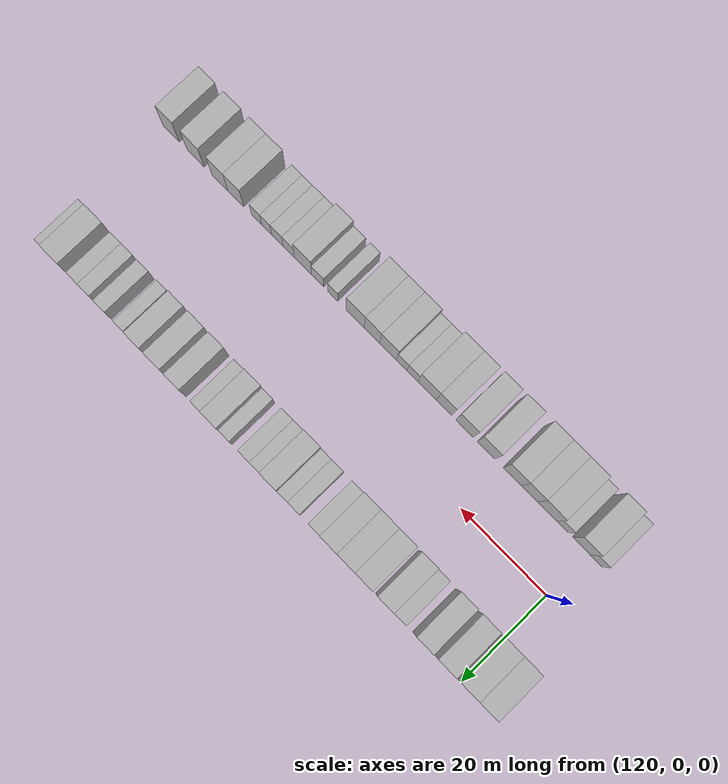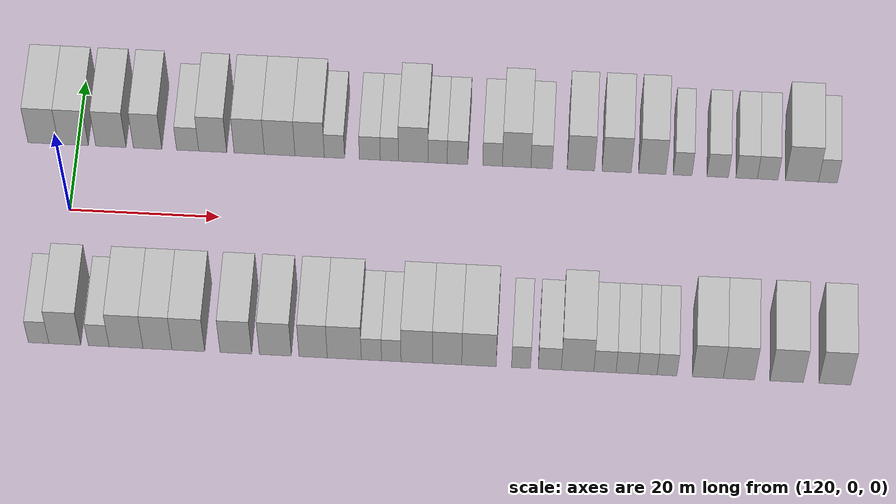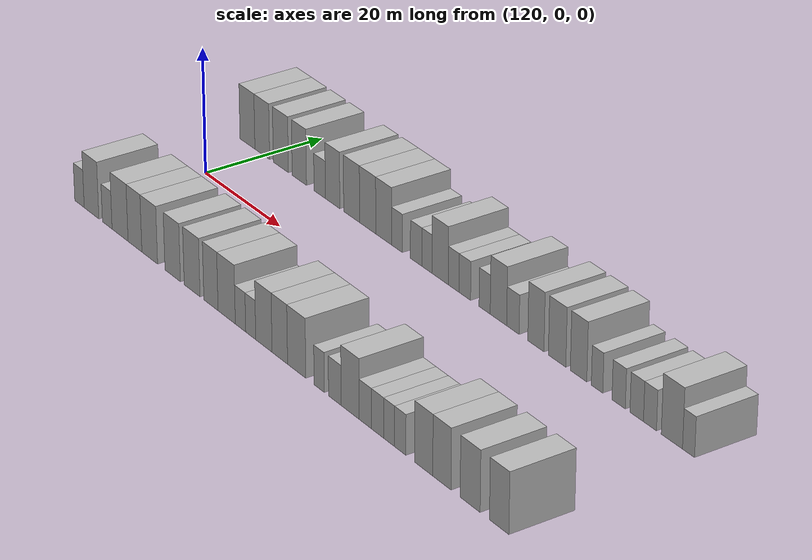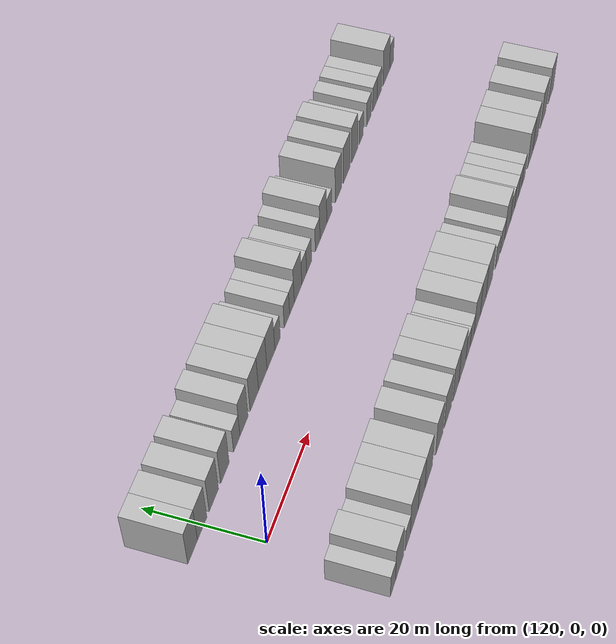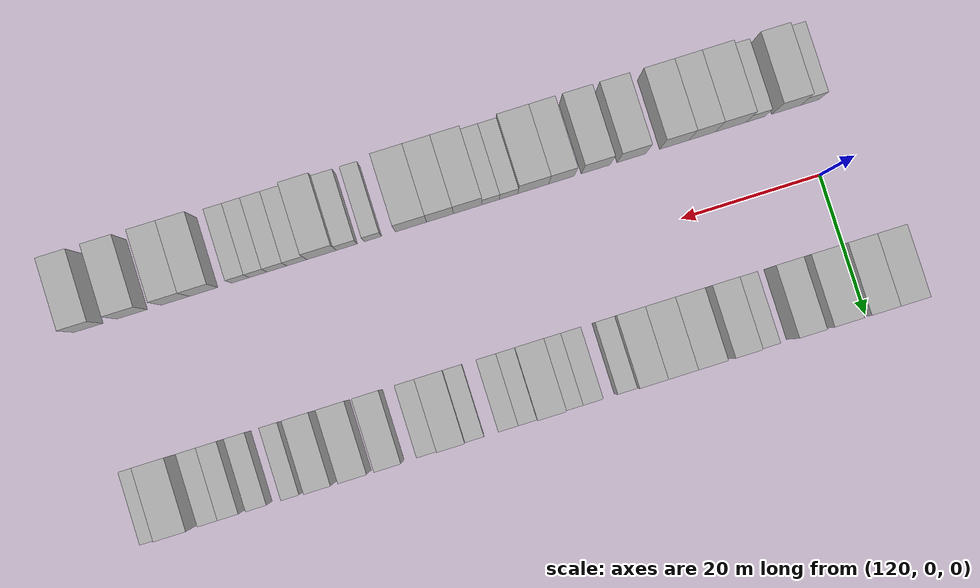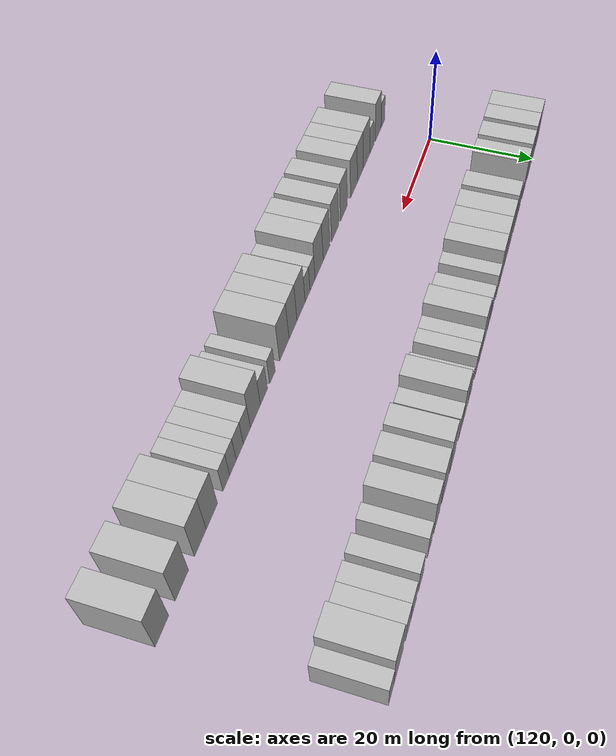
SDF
<sdf version="1.6">
 <world name="default">
  <model name="building_27">
   <static>1</static>
   <pose>115.3012 15.0000 0 0.000000 0.000000 1.570796</pose>
   <link name="link">
    <pose>0 0 4.50 0 0 0</pose>
    <collision name="collision"><geometry><box><size>10.0000 4.1226 9.0000</size></box></geometry></collision>
    <visual name="visual">
     <cast_shadows>0</cast_shadows>
     <geometry><box><size>10.0000 4.1226 9.0000</size></box></geometry>
     <material>
      <script>
       <uri>model://HANNAS_wall/materials/scripts</uri>
       <uri>model://HANNAS_wall/materials/textures</uri>
       <name>vrc/HANNAS_wall</name>
      </script>
     </material>
    </visual>
   </link>
  </model>
  <model name="building_28">
   <static>1</static>
   <pose>119.3822 15.0000 0 0.000000 0.000000 1.570796</pose>
   <link name="link">
    <pose>0 0 4.50 0 0 0</pose>
    <collision name="collision"><geometry><box><size>10.0000 4.0395 9.0000</size></box></geometry></collision>
    <visual name="visual">
     <cast_shadows>0</cast_shadows>
     <geometry><box><size>10.0000 4.0395 9.0000</size></box></geometry>
     <material>
      <script>
       <uri>model://HANNAS_wall/materials/scripts</uri>
       <uri>model://HANNAS_wall/materials/textures</uri>
       <name>vrc/HANNAS_wall</name>
      </script>
     </material>
    </visual>
   </link>
  </model>
  <model name="building_29">
   <static>1</static>
   <pose>124.4516 15.0000 0 0.000000 0.000000 1.570796</pose>
   <link name="link">
    <pose>0 0 4.50 0 0 0</pose>
    <collision name="collision"><geometry><box><size>10.0000 4.0994 9.0000</size></box></geometry></collision>
    <visual name="visual">
     <cast_shadows>0</cast_shadows>
     <geometry><box><size>10.0000 4.0994 9.0000</size></box></geometry>
     <material>
      <script>
       <uri>model://HANNAS_wall/materials/scripts</uri>
       <uri>model://HANNAS_wall/materials/textures</uri>
       <name>vrc/HANNAS_wall</name>
      </script>
     </material>
    </visual>
   </link>
  </model>
  <model name="building_30">
   <static>1</static>
   <pose>129.4214 15.0000 0 0.000000 0.000000 1.570796</pose>
   <link name="link">
    <pose>0 0 4.50 0 0 0</pose>
    <collision name="collision"><geometry><box><size>10.0000 3.8402 9.0000</size></box></geometry></collision>
    <visual name="visual">
     <cast_shadows>0</cast_shadows>
     <geometry><box><size>10.0000 3.8402 9.0000</size></box></geometry>
     <material>
      <script>
       <uri>model://HANNAS_wall/materials/scripts</uri>
       <uri>model://HANNAS_wall/materials/textures</uri>
       <name>vrc/HANNAS_wall</name>
      </script>
     </material>
    </visual>
   </link>
  </model>
  <model name="building_31">
   <static>1</static>
   <pose>134.8365 15.0000 0 0.000000 0.000000 1.570796</pose>
   <link name="link">
    <pose>0 0 3.00 0 0 0</pose>
    <collision name="collision"><geometry><box><size>10.0000 2.9901 6.0000</size></box></geometry></collision>
    <visual name="visual">
     <cast_shadows>0</cast_shadows>
     <geometry><box><size>10.0000 2.9901 6.0000</size></box></geometry>
     <material>
      <script>
       <uri>model://HANNAS_wall/materials/scripts</uri>
       <uri>model://HANNAS_wall/materials/textures</uri>
       <name>vrc/HANNAS_wall</name>
      </script>
     </material>
    </visual>
   </link>
  </model>
  <model name="building_32">
   <static>1</static>
   <pose>138.2175 15.0000 0 0.000000 0.000000 1.570796</pose>
   <link name="link">
    <pose>0 0 4.50 0 0 0</pose>
    <collision name="collision"><geometry><box><size>10.0000 3.7719 9.0000</size></box></geometry></collision>
    <visual name="visual">
     <cast_shadows>0</cast_shadows>
     <geometry><box><size>10.0000 3.7719 9.0000</size></box></geometry>
     <material>
      <script>
       <uri>model://HANNAS_wall/materials/scripts</uri>
       <uri>model://HANNAS_wall/materials/textures</uri>
       <name>vrc/HANNAS_wall</name>
      </script>
     </material>
    </visual>
   </link>
  </model>
  <model name="building_33">
   <static>1</static>
   <pose>143.1482 15.0000 0 0.000000 0.000000 1.570796</pose>
   <link name="link">
    <pose>0 0 4.50 0 0 0</pose>
    <collision name="collision"><geometry><box><size>10.0000 4.0895 9.0000</size></box></geometry></collision>
    <visual name="visual">
     <cast_shadows>0</cast_shadows>
     <geometry><box><size>10.0000 4.0895 9.0000</size></box></geometry>
     <material>
      <script>
       <uri>model://HANNAS_wall/materials/scripts</uri>
       <uri>model://HANNAS_wall/materials/textures</uri>
       <name>vrc/HANNAS_wall</name>
      </script>
     </material>
    </visual>
   </link>
  </model>
  <model name="building_34">
   <static>1</static>
   <pose>147.2556 15.0000 0 0.000000 0.000000 1.570796</pose>
   <link name="link">
    <pose>0 0 4.50 0 0 0</pose>
    <collision name="collision"><geometry><box><size>10.0000 4.1252 9.0000</size></box></geometry></collision>
    <visual name="visual">
     <cast_shadows>0</cast_shadows>
     <geometry><box><size>10.0000 4.1252 9.0000</size></box></geometry>
     <material>
      <script>
       <uri>model://HANNAS_wall/materials/scripts</uri>
       <uri>model://HANNAS_wall/materials/textures</uri>
       <name>vrc/HANNAS_wall</name>
      </script>
     </material>
    </visual>
   </link>
  </model>
  <model name="building_35">
   <static>1</static>
   <pose>151.2956 15.0000 0 0.000000 0.000000 1.570796</pose>
   <link name="link">
    <pose>0 0 4.50 0 0 0</pose>
    <collision name="collision"><geometry><box><size>10.0000 3.9548 9.0000</size></box></geometry></collision>
    <visual name="visual">
     <cast_shadows>0</cast_shadows>
     <geometry><box><size>10.0000 3.9548 9.0000</size></box></geometry>
     <material>
      <script>
       <uri>model://HANNAS_wall/materials/scripts</uri>
       <uri>model://HANNAS_wall/materials/textures</uri>
       <name>vrc/HANNAS_wall</name>
      </script>
     </material>
    </visual>
   </link>
  </model>
  <model name="building_36">
   <static>1</static>
   <pose>154.6378 15.0000 0 0.000000 0.000000 1.570796</pose>
   <link name="link">
    <pose>0 0 3.00 0 0 0</pose>
    <collision name="collision"><geometry><box><size>10.0000 2.7296 6.0000</size></box></geometry></collision>
    <visual name="visual">
     <cast_shadows>0</cast_shadows>
     <geometry><box><size>10.0000 2.7296 6.0000</size></box></geometry>
     <material>
      <script>
       <uri>model://HANNAS_wall/materials/scripts</uri>
       <uri>model://HANNAS_wall/materials/textures</uri>
       <name>vrc/HANNAS_wall</name>
      </script>
     </material>
    </visual>
   </link>
  </model>
  <model name="building_37">
   <static>1</static>
   <pose>159.4041 15.0000 0 0.000000 0.000000 1.570796</pose>
   <link name="link">
    <pose>0 0 3.00 0 0 0</pose>
    <collision name="collision"><geometry><box><size>10.0000 2.8030 6.0000</size></box></geometry></collision>
    <visual name="visual">
     <cast_shadows>0</cast_shadows>
     <geometry><box><size>10.0000 2.8030 6.0000</size></box></geometry>
     <material>
      <script>
       <uri>model://HANNAS_wall/materials/scripts</uri>
       <uri>model://HANNAS_wall/materials/textures</uri>
       <name>vrc/HANNAS_wall</name>
      </script>
     </material>
    </visual>
   </link>
  </model>
  <model name="building_38">
   <static>1</static>
   <pose>162.0353 15.0000 0 0.000000 0.000000 1.570796</pose>
   <link name="link">
    <pose>0 0 3.00 0 0 0</pose>
    <collision name="collision"><geometry><box><size>10.0000 2.4594 6.0000</size></box></geometry></collision>
    <visual name="visual">
     <cast_shadows>0</cast_shadows>
     <geometry><box><size>10.0000 2.4594 6.0000</size></box></geometry>
     <material>
      <script>
       <uri>model://HANNAS_wall/materials/scripts</uri>
       <uri>model://HANNAS_wall/materials/textures</uri>
       <name>vrc/HANNAS_wall</name>
      </script>
     </material>
    </visual>
   </link>
  </model>
  <model name="building_39">
   <static>1</static>
   <pose>165.2494 15.0000 0 0.000000 0.000000 1.570796</pose>
   <link name="link">
    <pose>0 0 4.50 0 0 0</pose>
    <collision name="collision"><geometry><box><size>10.0000 3.9687 9.0000</size></box></geometry></collision>
    <visual name="visual">
     <cast_shadows>0</cast_shadows>
     <geometry><box><size>10.0000 3.9687 9.0000</size></box></geometry>
     <material>
      <script>
       <uri>model://HANNAS_wall/materials/scripts</uri>
       <uri>model://HANNAS_wall/materials/textures</uri>
       <name>vrc/HANNAS_wall</name>
      </script>
     </material>
    </visual>
   </link>
  </model>
  <model name="building_40">
   <static>1</static>
   <pose>168.5299 15.0000 0 0.000000 0.000000 1.570796</pose>
   <link name="link">
    <pose>0 0 3.00 0 0 0</pose>
    <collision name="collision"><geometry><box><size>10.0000 2.5924 6.0000</size></box></geometry></collision>
    <visual name="visual">
     <cast_shadows>0</cast_shadows>
     <geometry><box><size>10.0000 2.5924 6.0000</size></box></geometry>
     <material>
      <script>
       <uri>model://HANNAS_wall/materials/scripts</uri>
       <uri>model://HANNAS_wall/materials/textures</uri>
       <name>vrc/HANNAS_wall</name>
      </script>
     </material>
    </visual>
   </link>
  </model>
  <model name="building_41">
   <static>1</static>
   <pose>171.2062 15.0000 0 0.000000 0.000000 1.570796</pose>
   <link name="link">
    <pose>0 0 3.00 0 0 0</pose>
    <collision name="collision"><geometry><box><size>10.0000 2.7601 6.0000</size></box></geometry></collision>
    <visual name="visual">
     <cast_shadows>0</cast_shadows>
     <geometry><box><size>10.0000 2.7601 6.0000</size></box></geometry>
     <material>
      <script>
       <uri>model://HANNAS_wall/materials/scripts</uri>
       <uri>model://HANNAS_wall/materials/textures</uri>
       <name>vrc/HANNAS_wall</name>
      </script>
     </material>
    </visual>
   </link>
  </model>
  <model name="building_42">
   <static>1</static>
   <pose>175.9025 15.0000 0 0.000000 0.000000 1.570796</pose>
   <link name="link">
    <pose>0 0 3.00 0 0 0</pose>
    <collision name="collision"><geometry><box><size>10.0000 2.6325 6.0000</size></box></geometry></collision>
    <visual name="visual">
     <cast_shadows>0</cast_shadows>
     <geometry><box><size>10.0000 2.6325 6.0000</size></box></geometry>
     <material>
      <script>
       <uri>model://HANNAS_wall/materials/scripts</uri>
       <uri>model://HANNAS_wall/materials/textures</uri>
       <name>vrc/HANNAS_wall</name>
      </script>
     </material>
    </visual>
   </link>
  </model>
  <model name="building_43">
   <static>1</static>
   <pose>179.1358 15.0000 0 0.000000 0.000000 1.570796</pose>
   <link name="link">
    <pose>0 0 4.50 0 0 0</pose>
    <collision name="collision"><geometry><box><size>10.0000 3.8341 9.0000</size></box></geometry></collision>
    <visual name="visual">
     <cast_shadows>0</cast_shadows>
     <geometry><box><size>10.0000 3.8341 9.0000</size></box></geometry>
     <material>
      <script>
       <uri>model://HANNAS_wall/materials/scripts</uri>
       <uri>model://HANNAS_wall/materials/textures</uri>
       <name>vrc/HANNAS_wall</name>
      </script>
     </material>
    </visual>
   </link>
  </model>
  <model name="building_44">
   <static>1</static>
   <pose>182.4893 15.0000 0 0.000000 0.000000 1.570796</pose>
   <link name="link">
    <pose>0 0 3.00 0 0 0</pose>
    <collision name="collision"><geometry><box><size>10.0000 2.8729 6.0000</size></box></geometry></collision>
    <visual name="visual">
     <cast_shadows>0</cast_shadows>
     <geometry><box><size>10.0000 2.8729 6.0000</size></box></geometry>
     <material>
      <script>
       <uri>model://HANNAS_wall/materials/scripts</uri>
       <uri>model://HANNAS_wall/materials/textures</uri>
       <name>vrc/HANNAS_wall</name>
      </script>
     </material>
    </visual>
   </link>
  </model>
  <model name="building_45">
   <static>1</static>
   <pose>187.7639 15.0000 0 0.000000 0.000000 1.570796</pose>
   <link name="link">
    <pose>0 0 4.50 0 0 0</pose>
    <collision name="collision"><geometry><box><size>10.0000 3.6764 9.0000</size></box></geometry></collision>
    <visual name="visual">
     <cast_shadows>0</cast_shadows>
     <geometry><box><size>10.0000 3.6764 9.0000</size></box></geometry>
     <material>
      <script>
       <uri>model://HANNAS_wall/materials/scripts</uri>
       <uri>model://HANNAS_wall/materials/textures</uri>
       <name>vrc/HANNAS_wall</name>
      </script>
     </material>
    </visual>
   </link>
  </model>
  <model name="building_46">
   <static>1</static>
   <pose>192.5586 15.0000 0 0.000000 0.000000 1.570796</pose>
   <link name="link">
    <pose>0 0 4.50 0 0 0</pose>
    <collision name="collision"><geometry><box><size>10.0000 3.9129 9.0000</size></box></geometry></collision>
    <visual name="visual">
     <cast_shadows>0</cast_shadows>
     <geometry><box><size>10.0000 3.9129 9.0000</size></box></geometry>
     <material>
      <script>
       <uri>model://HANNAS_wall/materials/scripts</uri>
       <uri>model://HANNAS_wall/materials/textures</uri>
       <name>vrc/HANNAS_wall</name>
      </script>
     </material>
    </visual>
   </link>
  </model>
  <model name="building_47">
   <static>1</static>
   <pose>197.3380 15.0000 0 0.000000 0.000000 1.570796</pose>
   <link name="link">
    <pose>0 0 4.50 0 0 0</pose>
    <collision name="collision"><geometry><box><size>10.0000 3.6460 9.0000</size></box></geometry></collision>
    <visual name="visual">
     <cast_shadows>0</cast_shadows>
     <geometry><box><size>10.0000 3.6460 9.0000</size></box></geometry>
     <material>
      <script>
       <uri>model://HANNAS_wall/materials/scripts</uri>
       <uri>model://HANNAS_wall/materials/textures</uri>
       <name>vrc/HANNAS_wall</name>
      </script>
     </material>
    </visual>
   </link>
  </model>
  <model name="building_48">
   <static>1</static>
   <pose>201.4136 15.0000 0 0.000000 0.000000 1.570796</pose>
   <link name="link">
    <pose>0 0 3.00 0 0 0</pose>
    <collision name="collision"><geometry><box><size>10.0000 2.5052 6.0000</size></box></geometry></collision>
    <visual name="visual">
     <cast_shadows>0</cast_shadows>
     <geometry><box><size>10.0000 2.5052 6.0000</size></box></geometry>
     <material>
      <script>
       <uri>model://HANNAS_wall/materials/scripts</uri>
       <uri>model://HANNAS_wall/materials/textures</uri>
       <name>vrc/HANNAS_wall</name>
      </script>
     </material>
    </visual>
   </link>
  </model>
  <model name="building_49">
   <static>1</static>
   <pose>206.1021 15.0000 0 0.000000 0.000000 1.570796</pose>
   <link name="link">
    <pose>0 0 3.00 0 0 0</pose>
    <collision name="collision"><geometry><box><size>10.0000 2.8717 6.0000</size></box></geometry></collision>
    <visual name="visual">
     <cast_shadows>0</cast_shadows>
     <geometry><box><size>10.0000 2.8717 6.0000</size></box></geometry>
     <material>
      <script>
       <uri>model://HANNAS_wall/materials/scripts</uri>
       <uri>model://HANNAS_wall/materials/textures</uri>
       <name>vrc/HANNAS_wall</name>
      </script>
     </material>
    </visual>
   </link>
  </model>
  <model name="building_50">
   <static>1</static>
   <pose>209.9766 15.0000 0 0.000000 0.000000 1.570796</pose>
   <link name="link">
    <pose>0 0 3.00 0 0 0</pose>
    <collision name="collision"><geometry><box><size>10.0000 2.8775 6.0000</size></box></geometry></collision>
    <visual name="visual">
     <cast_shadows>0</cast_shadows>
     <geometry><box><size>10.0000 2.8775 6.0000</size></box></geometry>
     <material>
      <script>
       <uri>model://HANNAS_wall/materials/scripts</uri>
       <uri>model://HANNAS_wall/materials/textures</uri>
       <name>vrc/HANNAS_wall</name>
      </script>
     </material>
    </visual>
   </link>
  </model>
  <model name="building_51">
   <static>1</static>
   <pose>212.7924 15.0000 0 0.000000 0.000000 1.570796</pose>
   <link name="link">
    <pose>0 0 3.00 0 0 0</pose>
    <collision name="collision"><geometry><box><size>10.0000 2.7541 6.0000</size></box></geometry></collision>
    <visual name="visual">
     <cast_shadows>0</cast_shadows>
     <geometry><box><size>10.0000 2.7541 6.0000</size></box></geometry>
     <material>
      <script>
       <uri>model://HANNAS_wall/materials/scripts</uri>
       <uri>model://HANNAS_wall/materials/textures</uri>
       <name>vrc/HANNAS_wall</name>
      </script>
     </material>
    </visual>
   </link>
  </model>
  <model name="building_52">
   <static>1</static>
   <pose>217.3848 15.0000 0 0.000000 0.000000 1.570796</pose>
   <link name="link">
    <pose>0 0 4.50 0 0 0</pose>
    <collision name="collision"><geometry><box><size>10.0000 4.4307 9.0000</size></box></geometry></collision>
    <visual name="visual">
     <cast_shadows>0</cast_shadows>
     <geometry><box><size>10.0000 4.4307 9.0000</size></box></geometry>
     <material>
      <script>
       <uri>model://HANNAS_wall/materials/scripts</uri>
       <uri>model://HANNAS_wall/materials/textures</uri>
       <name>vrc/HANNAS_wall</name>
      </script>
     </material>
    </visual>
   </link>
  </model>
  <model name="building_53">
   <static>1</static>
   <pose>220.8513 15.0000 0 0.000000 0.000000 1.570796</pose>
   <link name="link">
    <pose>0 0 3.00 0 0 0</pose>
    <collision name="collision"><geometry><box><size>10.0000 2.5022 6.0000</size></box></geometry></collision>
    <visual name="visual">
     <cast_shadows>0</cast_shadows>
     <geometry><box><size>10.0000 2.5022 6.0000</size></box></geometry>
     <material>
      <script>
       <uri>model://HANNAS_wall/materials/scripts</uri>
       <uri>model://HANNAS_wall/materials/textures</uri>
       <name>vrc/HANNAS_wall</name>
      </script>
     </material>
    </visual>
   </link>
  </model>
  <model name="building_80">
   <static>1</static>
   <pose>118.1825 -15.0000 0 0.000000 0.000000 1.570796</pose>
   <link name="link">
    <pose>0 0 3.00 0 0 0</pose>
    <collision name="collision"><geometry><box><size>10.0000 2.6912 6.0000</size></box></geometry></collision>
    <visual name="visual">
     <cast_shadows>0</cast_shadows>
     <geometry><box><size>10.0000 2.6912 6.0000</size></box></geometry>
     <material>
      <script>
       <uri>model://HANNAS_wall/materials/scripts</uri>
       <uri>model://HANNAS_wall/materials/textures</uri>
       <name>vrc/HANNAS_wall</name>
      </script>
     </material>
    </visual>
   </link>
  </model>
  <model name="building_81">
   <static>1</static>
   <pose>121.6121 -15.0000 0 0.000000 0.000000 1.570796</pose>
   <link name="link">
    <pose>0 0 4.50 0 0 0</pose>
    <collision name="collision"><geometry><box><size>10.0000 4.1680 9.0000</size></box></geometry></collision>
    <visual name="visual">
     <cast_shadows>0</cast_shadows>
     <geometry><box><size>10.0000 4.1680 9.0000</size></box></geometry>
     <material>
      <script>
       <uri>model://HANNAS_wall/materials/scripts</uri>
       <uri>model://HANNAS_wall/materials/textures</uri>
       <name>vrc/HANNAS_wall</name>
      </script>
     </material>
    </visual>
   </link>
  </model>
  <model name="building_82">
   <static>1</static>
   <pose>126.0478 -15.0000 0 0.000000 0.000000 1.570796</pose>
   <link name="link">
    <pose>0 0 3.00 0 0 0</pose>
    <collision name="collision"><geometry><box><size>10.0000 2.7035 6.0000</size></box></geometry></collision>
    <visual name="visual">
     <cast_shadows>0</cast_shadows>
     <geometry><box><size>10.0000 2.7035 6.0000</size></box></geometry>
     <material>
      <script>
       <uri>model://HANNAS_wall/materials/scripts</uri>
       <uri>model://HANNAS_wall/materials/textures</uri>
       <name>vrc/HANNAS_wall</name>
      </script>
     </material>
    </visual>
   </link>
  </model>
  <model name="building_83">
   <static>1</static>
   <pose>129.6201 -15.0000 0 0.000000 0.000000 1.570796</pose>
   <link name="link">
    <pose>0 0 4.50 0 0 0</pose>
    <collision name="collision"><geometry><box><size>10.0000 4.4412 9.0000</size></box></geometry></collision>
    <visual name="visual">
     <cast_shadows>0</cast_shadows>
     <geometry><box><size>10.0000 4.4412 9.0000</size></box></geometry>
     <material>
      <script>
       <uri>model://HANNAS_wall/materials/scripts</uri>
       <uri>model://HANNAS_wall/materials/textures</uri>
       <name>vrc/HANNAS_wall</name>
      </script>
     </material>
    </visual>
   </link>
  </model>
  <model name="building_84">
   <static>1</static>
   <pose>133.7398 -15.0000 0 0.000000 0.000000 1.570796</pose>
   <link name="link">
    <pose>0 0 4.50 0 0 0</pose>
    <collision name="collision"><geometry><box><size>10.0000 3.7983 9.0000</size></box></geometry></collision>
    <visual name="visual">
     <cast_shadows>0</cast_shadows>
     <geometry><box><size>10.0000 3.7983 9.0000</size></box></geometry>
     <material>
      <script>
       <uri>model://HANNAS_wall/materials/scripts</uri>
       <uri>model://HANNAS_wall/materials/textures</uri>
       <name>vrc/HANNAS_wall</name>
      </script>
     </material>
    </visual>
   </link>
  </model>
  <model name="building_85">
   <static>1</static>
   <pose>137.7693 -15.0000 0 0.000000 0.000000 1.570796</pose>
   <link name="link">
    <pose>0 0 4.50 0 0 0</pose>
    <collision name="collision"><geometry><box><size>10.0000 4.2606 9.0000</size></box></geometry></collision>
    <visual name="visual">
     <cast_shadows>0</cast_shadows>
     <geometry><box><size>10.0000 4.2606 9.0000</size></box></geometry>
     <material>
      <script>
       <uri>model://HANNAS_wall/materials/scripts</uri>
       <uri>model://HANNAS_wall/materials/textures</uri>
       <name>vrc/HANNAS_wall</name>
      </script>
     </material>
    </visual>
   </link>
  </model>
  <model name="building_86">
   <static>1</static>
   <pose>143.9626 -15.0000 0 0.000000 0.000000 1.570796</pose>
   <link name="link">
    <pose>0 0 4.50 0 0 0</pose>
    <collision name="collision"><geometry><box><size>10.0000 4.1261 9.0000</size></box></geometry></collision>
    <visual name="visual">
     <cast_shadows>0</cast_shadows>
     <geometry><box><size>10.0000 4.1261 9.0000</size></box></geometry>
     <material>
      <script>
       <uri>model://HANNAS_wall/materials/scripts</uri>
       <uri>model://HANNAS_wall/materials/textures</uri>
       <name>vrc/HANNAS_wall</name>
      </script>
     </material>
    </visual>
   </link>
  </model>
  <model name="building_87">
   <static>1</static>
   <pose>149.1090 -15.0000 0 0.000000 0.000000 1.570796</pose>
   <link name="link">
    <pose>0 0 4.50 0 0 0</pose>
    <collision name="collision"><geometry><box><size>10.0000 4.1667 9.0000</size></box></geometry></collision>
    <visual name="visual">
     <cast_shadows>0</cast_shadows>
     <geometry><box><size>10.0000 4.1667 9.0000</size></box></geometry>
     <material>
      <script>
       <uri>model://HANNAS_wall/materials/scripts</uri>
       <uri>model://HANNAS_wall/materials/textures</uri>
       <name>vrc/HANNAS_wall</name>
      </script>
     </material>
    </visual>
   </link>
  </model>
  <model name="building_88">
   <static>1</static>
   <pose>154.0344 -15.0000 0 0.000000 0.000000 1.570796</pose>
   <link name="link">
    <pose>0 0 4.50 0 0 0</pose>
    <collision name="collision"><geometry><box><size>10.0000 3.6840 9.0000</size></box></geometry></collision>
    <visual name="visual">
     <cast_shadows>0</cast_shadows>
     <geometry><box><size>10.0000 3.6840 9.0000</size></box></geometry>
     <material>
      <script>
       <uri>model://HANNAS_wall/materials/scripts</uri>
       <uri>model://HANNAS_wall/materials/textures</uri>
       <name>vrc/HANNAS_wall</name>
      </script>
     </material>
    </visual>
   </link>
  </model>
  <model name="building_89">
   <static>1</static>
   <pose>158.0920 -15.0000 0 0.000000 0.000000 1.570796</pose>
   <link name="link">
    <pose>0 0 4.50 0 0 0</pose>
    <collision name="collision"><geometry><box><size>10.0000 4.4312 9.0000</size></box></geometry></collision>
    <visual name="visual">
     <cast_shadows>0</cast_shadows>
     <geometry><box><size>10.0000 4.4312 9.0000</size></box></geometry>
     <material>
      <script>
       <uri>model://HANNAS_wall/materials/scripts</uri>
       <uri>model://HANNAS_wall/materials/textures</uri>
       <name>vrc/HANNAS_wall</name>
      </script>
     </material>
    </visual>
   </link>
  </model>
  <model name="building_90">
   <static>1</static>
   <pose>161.6257 -15.0000 0 0.000000 0.000000 1.570796</pose>
   <link name="link">
    <pose>0 0 3.00 0 0 0</pose>
    <collision name="collision"><geometry><box><size>10.0000 2.6363 6.0000</size></box></geometry></collision>
    <visual name="visual">
     <cast_shadows>0</cast_shadows>
     <geometry><box><size>10.0000 2.6363 6.0000</size></box></geometry>
     <material>
      <script>
       <uri>model://HANNAS_wall/materials/scripts</uri>
       <uri>model://HANNAS_wall/materials/textures</uri>
       <name>vrc/HANNAS_wall</name>
      </script>
     </material>
    </visual>
   </link>
  </model>
  <model name="building_91">
   <static>1</static>
   <pose>164.2075 -15.0000 0 0.000000 0.000000 1.570796</pose>
   <link name="link">
    <pose>0 0 3.00 0 0 0</pose>
    <collision name="collision"><geometry><box><size>10.0000 2.5273 6.0000</size></box></geometry></collision>
    <visual name="visual">
     <cast_shadows>0</cast_shadows>
     <geometry><box><size>10.0000 2.5273 6.0000</size></box></geometry>
     <material>
      <script>
       <uri>model://HANNAS_wall/materials/scripts</uri>
       <uri>model://HANNAS_wall/materials/textures</uri>
       <name>vrc/HANNAS_wall</name>
      </script>
     </material>
    </visual>
   </link>
  </model>
  <model name="building_92">
   <static>1</static>
   <pose>167.5120 -15.0000 0 0.000000 0.000000 1.570796</pose>
   <link name="link">
    <pose>0 0 4.50 0 0 0</pose>
    <collision name="collision"><geometry><box><size>10.0000 4.0818 9.0000</size></box></geometry></collision>
    <visual name="visual">
     <cast_shadows>0</cast_shadows>
     <geometry><box><size>10.0000 4.0818 9.0000</size></box></geometry>
     <material>
      <script>
       <uri>model://HANNAS_wall/materials/scripts</uri>
       <uri>model://HANNAS_wall/materials/textures</uri>
       <name>vrc/HANNAS_wall</name>
      </script>
     </material>
    </visual>
   </link>
  </model>
  <model name="building_93">
   <static>1</static>
   <pose>171.4656 -15.0000 0 0.000000 0.000000 1.570796</pose>
   <link name="link">
    <pose>0 0 4.50 0 0 0</pose>
    <collision name="collision"><geometry><box><size>10.0000 3.8253 9.0000</size></box></geometry></collision>
    <visual name="visual">
     <cast_shadows>0</cast_shadows>
     <geometry><box><size>10.0000 3.8253 9.0000</size></box></geometry>
     <material>
      <script>
       <uri>model://HANNAS_wall/materials/scripts</uri>
       <uri>model://HANNAS_wall/materials/textures</uri>
       <name>vrc/HANNAS_wall</name>
      </script>
     </material>
    </visual>
   </link>
  </model>
  <model name="building_94">
   <static>1</static>
   <pose>175.6061 -15.0000 0 0.000000 0.000000 1.570796</pose>
   <link name="link">
    <pose>0 0 4.50 0 0 0</pose>
    <collision name="collision"><geometry><box><size>10.0000 4.4559 9.0000</size></box></geometry></collision>
    <visual name="visual">
     <cast_shadows>0</cast_shadows>
     <geometry><box><size>10.0000 4.4559 9.0000</size></box></geometry>
     <material>
      <script>
       <uri>model://HANNAS_wall/materials/scripts</uri>
       <uri>model://HANNAS_wall/materials/textures</uri>
       <name>vrc/HANNAS_wall</name>
      </script>
     </material>
    </visual>
   </link>
  </model>
  <model name="building_95">
   <static>1</static>
   <pose>181.0634 -15.0000 0 0.000000 0.000000 1.570796</pose>
   <link name="link">
    <pose>0 0 3.00 0 0 0</pose>
    <collision name="collision"><geometry><box><size>10.0000 2.4587 6.0000</size></box></geometry></collision>
    <visual name="visual">
     <cast_shadows>0</cast_shadows>
     <geometry><box><size>10.0000 2.4587 6.0000</size></box></geometry>
     <material>
      <script>
       <uri>model://HANNAS_wall/materials/scripts</uri>
       <uri>model://HANNAS_wall/materials/textures</uri>
       <name>vrc/HANNAS_wall</name>
      </script>
     </material>
    </visual>
   </link>
  </model>
  <model name="building_96">
   <static>1</static>
   <pose>184.7893 -15.0000 0 0.000000 0.000000 1.570796</pose>
   <link name="link">
    <pose>0 0 3.00 0 0 0</pose>
    <collision name="collision"><geometry><box><size>10.0000 2.9931 6.0000</size></box></geometry></collision>
    <visual name="visual">
     <cast_shadows>0</cast_shadows>
     <geometry><box><size>10.0000 2.9931 6.0000</size></box></geometry>
     <material>
      <script>
       <uri>model://HANNAS_wall/materials/scripts</uri>
       <uri>model://HANNAS_wall/materials/textures</uri>
       <name>vrc/HANNAS_wall</name>
      </script>
     </material>
    </visual>
   </link>
  </model>
  <model name="building_97">
   <static>1</static>
   <pose>188.3953 -15.0000 0 0.000000 0.000000 1.570796</pose>
   <link name="link">
    <pose>0 0 4.50 0 0 0</pose>
    <collision name="collision"><geometry><box><size>10.0000 4.2189 9.0000</size></box></geometry></collision>
    <visual name="visual">
     <cast_shadows>0</cast_shadows>
     <geometry><box><size>10.0000 4.2189 9.0000</size></box></geometry>
     <material>
      <script>
       <uri>model://HANNAS_wall/materials/scripts</uri>
       <uri>model://HANNAS_wall/materials/textures</uri>
       <name>vrc/HANNAS_wall</name>
      </script>
     </material>
    </visual>
   </link>
  </model>
  <model name="building_98">
   <static>1</static>
   <pose>191.9410 -15.0000 0 0.000000 0.000000 1.570796</pose>
   <link name="link">
    <pose>0 0 3.00 0 0 0</pose>
    <collision name="collision"><geometry><box><size>10.0000 2.8725 6.0000</size></box></geometry></collision>
    <visual name="visual">
     <cast_shadows>0</cast_shadows>
     <geometry><box><size>10.0000 2.8725 6.0000</size></box></geometry>
     <material>
      <script>
       <uri>model://HANNAS_wall/materials/scripts</uri>
       <uri>model://HANNAS_wall/materials/textures</uri>
       <name>vrc/HANNAS_wall</name>
      </script>
     </material>
    </visual>
   </link>
  </model>
  <model name="building_99">
   <static>1</static>
   <pose>194.7806 -15.0000 0 0.000000 0.000000 1.570796</pose>
   <link name="link">
    <pose>0 0 3.00 0 0 0</pose>
    <collision name="collision"><geometry><box><size>10.0000 2.8066 6.0000</size></box></geometry></collision>
    <visual name="visual">
     <cast_shadows>0</cast_shadows>
     <geometry><box><size>10.0000 2.8066 6.0000</size></box></geometry>
     <material>
      <script>
       <uri>model://HANNAS_wall/materials/scripts</uri>
       <uri>model://HANNAS_wall/materials/textures</uri>
       <name>vrc/HANNAS_wall</name>
      </script>
     </material>
    </visual>
   </link>
  </model>
  <model name="building_100">
   <static>1</static>
   <pose>197.4418 -15.0000 0 0.000000 0.000000 1.570796</pose>
   <link name="link">
    <pose>0 0 3.00 0 0 0</pose>
    <collision name="collision"><geometry><box><size>10.0000 2.5159 6.0000</size></box></geometry></collision>
    <visual name="visual">
     <cast_shadows>0</cast_shadows>
     <geometry><box><size>10.0000 2.5159 6.0000</size></box></geometry>
     <material>
      <script>
       <uri>model://HANNAS_wall/materials/scripts</uri>
       <uri>model://HANNAS_wall/materials/textures</uri>
       <name>vrc/HANNAS_wall</name>
      </script>
     </material>
    </visual>
   </link>
  </model>
  <model name="building_101">
   <static>1</static>
   <pose>199.9854 -15.0000 0 0.000000 0.000000 1.570796</pose>
   <link name="link">
    <pose>0 0 3.00 0 0 0</pose>
    <collision name="collision"><geometry><box><size>10.0000 2.5713 6.0000</size></box></geometry></collision>
    <visual name="visual">
     <cast_shadows>0</cast_shadows>
     <geometry><box><size>10.0000 2.5713 6.0000</size></box></geometry>
     <material>
      <script>
       <uri>model://HANNAS_wall/materials/scripts</uri>
       <uri>model://HANNAS_wall/materials/textures</uri>
       <name>vrc/HANNAS_wall</name>
      </script>
     </material>
    </visual>
   </link>
  </model>
  <model name="building_102">
   <static>1</static>
   <pose>205.2788 -15.0000 0 0.000000 0.000000 1.570796</pose>
   <link name="link">
    <pose>0 0 4.50 0 0 0</pose>
    <collision name="collision"><geometry><box><size>10.0000 4.0155 9.0000</size></box></geometry></collision>
    <visual name="visual">
     <cast_shadows>0</cast_shadows>
     <geometry><box><size>10.0000 4.0155 9.0000</size></box></geometry>
     <material>
      <script>
       <uri>model://HANNAS_wall/materials/scripts</uri>
       <uri>model://HANNAS_wall/materials/textures</uri>
       <name>vrc/HANNAS_wall</name>
      </script>
     </material>
    </visual>
   </link>
  </model>
  <model name="building_103">
   <static>1</static>
   <pose>209.3016 -15.0000 0 0.000000 0.000000 1.570796</pose>
   <link name="link">
    <pose>0 0 4.50 0 0 0</pose>
    <collision name="collision"><geometry><box><size>10.0000 4.0300 9.0000</size></box></geometry></collision>
    <visual name="visual">
     <cast_shadows>0</cast_shadows>
     <geometry><box><size>10.0000 4.0300 9.0000</size></box></geometry>
     <material>
      <script>
       <uri>model://HANNAS_wall/materials/scripts</uri>
       <uri>model://HANNAS_wall/materials/textures</uri>
       <name>vrc/HANNAS_wall</name>
      </script>
     </material>
    </visual>
   </link>
  </model>
  <model name="building_104">
   <static>1</static>
   <pose>215.4758 -15.0000 0 0.000000 0.000000 1.570796</pose>
   <link name="link">
    <pose>0 0 4.50 0 0 0</pose>
    <collision name="collision"><geometry><box><size>10.0000 4.3184 9.0000</size></box></geometry></collision>
    <visual name="visual">
     <cast_shadows>0</cast_shadows>
     <geometry><box><size>10.0000 4.3184 9.0000</size></box></geometry>
     <material>
      <script>
       <uri>model://HANNAS_wall/materials/scripts</uri>
       <uri>model://HANNAS_wall/materials/textures</uri>
       <name>vrc/HANNAS_wall</name>
      </script>
     </material>
    </visual>
   </link>
  </model>
  <model name="building_105">
   <static>1</static>
   <pose>221.6970 -15.0000 0 0.000000 0.000000 1.570796</pose>
   <link name="link">
    <pose>0 0 4.50 0 0 0</pose>
    <collision name="collision"><geometry><box><size>10.0000 4.1239 9.0000</size></box></geometry></collision>
    <visual name="visual">
     <cast_shadows>0</cast_shadows>
     <geometry><box><size>10.0000 4.1239 9.0000</size></box></geometry>
     <material>
      <script>
       <uri>model://HANNAS_wall/materials/scripts</uri>
       <uri>model://HANNAS_wall/materials/textures</uri>
       <name>vrc/HANNAS_wall</name>
      </script>
     </material>
    </visual>
   </link>
  </model>
 </world>
</sdf>
